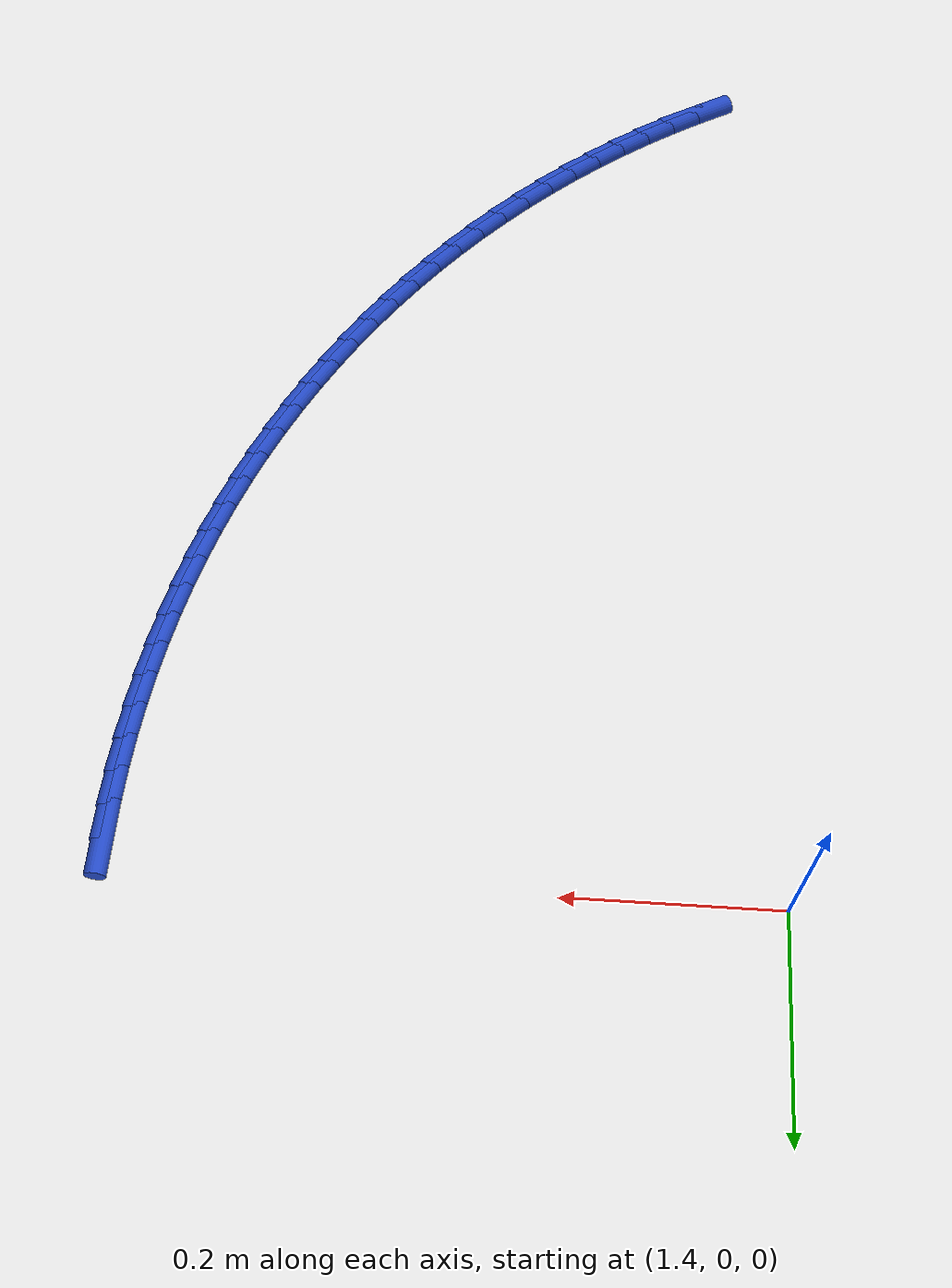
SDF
<sdf version="1.6">
 <world name="default">
  <model name="ground_plane">
   <static>1</static>
   <link name="link">
    <collision name="collision">
     <geometry><plane><normal>0 0 1</normal><size>100 100</size></plane></geometry>
     <surface><friction><ode><mu>100</mu><mu2>50</mu2></ode></friction></surface>
    </collision>
    <visual name="visual">
     <cast_shadows>0</cast_shadows>
     <geometry><plane><normal>0 0 1</normal><size>100 100</size></plane></geometry>
     <material>
      <script><uri>file://media/materials/scripts/gazebo.material</uri><name>Gazebo/WhiteGlow</name></script>
     </material>
    </visual>
   </link>
  </model>
  <model name="line">
   <static>1</static>
   <static>1</static>
   <static>1</static>
   <static>1</static>
   <static>1</static>
   <static>1</static>
   <static>1</static>
   <static>1</static>
   <static>1</static>
   <static>1</static>
   <static>1</static>
   <static>1</static>
   <static>1</static>
   <static>1</static>
   <static>1</static>
   <static>1</static>
   <static>1</static>
   <static>1</static>
   <static>1</static>
   <static>1</static>
   <static>1</static>
   <static>1</static>
   <static>1</static>
   <static>1</static>
   <static>1</static>
   <static>1</static>
   <static>1</static>
   <static>1</static>
   <static>1</static>
   <static>1</static>
   <static>1</static>
   <static>1</static>
   <static>1</static>
   <static>1</static>
   <static>1</static>
   <static>1</static>
   <static>1</static>
   <static>1</static>
   <static>1</static>
   <static>1</static>
   <static>1</static>
   <static>1</static>
   <static>1</static>
   <static>1</static>
   <static>1</static>
   <static>1</static>
   <static>1</static>
   <static>1</static>
   <static>1</static>
   <static>1</static>
   <static>1</static>
   <static>1</static>
   <static>1</static>
   <static>1</static>
   <static>1</static>
   <static>1</static>
   <static>1</static>
   <static>1</static>
   <static>1</static>
   <static>1</static>
   <static>1</static>
   <static>1</static>
   <static>1</static>
   <static>1</static>
   <static>1</static>
   <static>1</static>
   <static>1</static>
   <static>1</static>
   <static>1</static>
   <static>1</static>
   <static>1</static>
   <static>1</static>
   <static>1</static>
   <static>1</static>
   <static>1</static>
   <static>1</static>
   <static>1</static>
   <static>1</static>
   <static>1</static>
   <static>1</static>
   <static>1</static>
   <static>1</static>
   <static>1</static>
   <static>1</static>
   <static>1</static>
   <static>1</static>
   <static>1</static>
   <static>1</static>
   <static>1</static>
   <static>1</static>
   <static>1</static>
   <static>1</static>
   <static>1</static>
   <static>1</static>
   <static>1</static>
   <static>1</static>
   <static>1</static>
   <static>1</static>
   <static>1</static>
   <static>1</static>
   <static>1</static>
   <static>1</static>
   <link name="link_101">
    <pose>1.999503259582305 -0.031409081267145374 0.01 0 1.57 1.5234431790212166</pose>
    <collision name="collision">
     <geometry><cylinder><radius>0.01</radius><length>0.08</length></cylinder></geometry>
    </collision>
    <visual name="visual">
     <material>
      <script><name>Gazebo/Blue</name><uri>file://media/materials/scripts/gazebo.material</uri></script>
     </material>
     <geometry><cylinder><radius>0.01</radius><length>0.08</length></cylinder></geometry>
    </visual>
   </link>
   <static>1</static>
   <link name="link_102">
    <pose>1.9980162852539491 -0.06278741212037331 0.01 0 1.57 1.4920137451487936</pose>
    <collision name="collision">
     <geometry><cylinder><radius>0.01</radius><length>0.08</length></cylinder></geometry>
    </collision>
    <visual name="visual">
     <material>
      <script><name>Gazebo/Blue</name><uri>file://media/materials/scripts/gazebo.material</uri></script>
     </material>
     <geometry><cylinder><radius>0.01</radius><length>0.08</length></cylinder></geometry>
    </visual>
   </link>
   <static>1</static>
   <link name="link_103">
    <pose>1.9955439474020331 -0.09410424214576474 0.01 0 1.57 1.4606632303339313</pose>
    <collision name="collision">
     <geometry><cylinder><radius>0.01</radius><length>0.08</length></cylinder></geometry>
    </collision>
    <visual name="visual">
     <material>
      <script><name>Gazebo/Blue</name><uri>file://media/materials/scripts/gazebo.material</uri></script>
     </material>
     <geometry><cylinder><radius>0.01</radius><length>0.08</length></cylinder></geometry>
    </visual>
   </link>
   <static>1</static>
   <link name="link_104">
    <pose>1.992091116413654 -0.1253288209294014 0.01 0 1.57 1.4293602481064585</pose>
    <collision name="collision">
     <geometry><cylinder><radius>0.01</radius><length>0.08</length></cylinder></geometry>
    </collision>
    <visual name="visual">
     <material>
      <script><name>Gazebo/Blue</name><uri>file://media/materials/scripts/gazebo.material</uri></script>
     </material>
     <geometry><cylinder><radius>0.01</radius><length>0.08</length></cylinder></geometry>
    </visual>
   </link>
   <static>1</static>
   <link name="link_105">
    <pose>1.9876626626759093 -0.15643039805736497 0.01 0 1.57 1.398073140124333</pose>
    <collision name="collision">
     <geometry><cylinder><radius>0.01</radius><length>0.08</length></cylinder></geometry>
    </collision>
    <visual name="visual">
     <material>
      <script><name>Gazebo/Blue</name><uri>file://media/materials/scripts/gazebo.material</uri></script>
     </material>
     <geometry><cylinder><radius>0.01</radius><length>0.08</length></cylinder></geometry>
    </visual>
   </link>
   <static>1</static>
   <link name="link_106">
    <pose>1.9822634565758985 -0.18737822311573724 0.01 0 1.57 1.3667701578968943</pose>
    <collision name="collision">
     <geometry><cylinder><radius>0.01</radius><length>0.08</length></cylinder></geometry>
    </collision>
    <visual name="visual">
     <material>
      <script><name>Gazebo/Blue</name><uri>file://media/materials/scripts/gazebo.material</uri></script>
     </material>
     <geometry><cylinder><radius>0.01</radius><length>0.08</length></cylinder></geometry>
    </visual>
   </link>
   <static>1</static>
   <link name="link_107">
    <pose>1.9758983685007194 -0.21814154569059993 0.01 0 1.57 1.335419643082002</pose>
    <collision name="collision">
     <geometry><cylinder><radius>0.01</radius><length>0.08</length></cylinder></geometry>
    </collision>
    <visual name="visual">
     <material>
      <script><name>Gazebo/Blue</name><uri>file://media/materials/scripts/gazebo.material</uri></script>
     </material>
     <geometry><cylinder><radius>0.01</radius><length>0.08</length></cylinder></geometry>
    </visual>
   </link>
   <static>1</static>
   <link name="link_108">
    <pose>1.9685722688374692 -0.2486896153680347 0.01 0 1.57 1.3039902092095965</pose>
    <collision name="collision">
     <geometry><cylinder><radius>0.01</radius><length>0.08</length></cylinder></geometry>
    </collision>
    <visual name="visual">
     <material>
      <script><name>Gazebo/Blue</name><uri>file://media/materials/scripts/gazebo.material</uri></script>
     </material>
     <geometry><cylinder><radius>0.01</radius><length>0.08</length></cylinder></geometry>
    </visual>
   </link>
   <static>1</static>
   <link name="link_109">
    <pose>1.9602900279732485 -0.2789916817341234 0.01 0 1.57 1.272450927647741</pose>
    <collision name="collision">
     <geometry><cylinder><radius>0.01</radius><length>0.08</length></cylinder></geometry>
    </collision>
    <visual name="visual">
     <material>
      <script><name>Gazebo/Blue</name><uri>file://media/materials/scripts/gazebo.material</uri></script>
     </material>
     <geometry><cylinder><radius>0.01</radius><length>0.08</length></cylinder></geometry>
    </visual>
   </link>
   <static>1</static>
   <link name="link_110">
    <pose>1.9510565162951532 -0.30901699437494773 0.01 0 1.57 1.2408231952240745</pose>
    <collision name="collision">
     <geometry><cylinder><radius>0.01</radius><length>0.08</length></cylinder></geometry>
    </collision>
    <visual name="visual">
     <material>
      <script><name>Gazebo/Blue</name><uri>file://media/materials/scripts/gazebo.material</uri></script>
     </material>
     <geometry><cylinder><radius>0.01</radius><length>0.08</length></cylinder></geometry>
    </visual>
   </link>
   <static>1</static>
   <link name="link_111">
    <pose>1.940878148194744 -0.33873530455405015 0.01 0 1.57 1.2092839136622535</pose>
    <collision name="collision">
     <geometry><cylinder><radius>0.01</radius><length>0.08</length></cylinder></geometry>
    </collision>
    <visual name="visual">
     <material>
      <script><name>Gazebo/Blue</name><uri>file://media/materials/scripts/gazebo.material</uri></script>
     </material>
     <geometry><cylinder><radius>0.01</radius><length>0.08</length></cylinder></geometry>
    </visual>
   </link>
   <static>1</static>
   <link name="link_112">
    <pose>1.9297675140814308 -0.36811837024481675 0.01 0 1.57 1.1778544797898112</pose>
    <collision name="collision">
     <geometry><cylinder><radius>0.01</radius><length>0.08</length></cylinder></geometry>
    </collision>
    <visual name="visual">
     <material>
      <script><name>Gazebo/Blue</name><uri>file://media/materials/scripts/gazebo.material</uri></script>
     </material>
     <geometry><cylinder><radius>0.01</radius><length>0.08</length></cylinder></geometry>
    </visual>
   </link>
   <static>1</static>
   <link name="link_113">
    <pose>1.9177387483690853 -0.3971384510980942 0.01 0 1.57 1.1465039649749487</pose>
    <collision name="collision">
     <geometry><cylinder><radius>0.01</radius><length>0.08</length></cylinder></geometry>
    </collision>
    <visual name="visual">
     <material>
      <script><name>Gazebo/Blue</name><uri>file://media/materials/scripts/gazebo.material</uri></script>
     </material>
     <geometry><cylinder><radius>0.01</radius><length>0.08</length></cylinder></geometry>
    </visual>
   </link>
   <static>1</static>
   <link name="link_114">
    <pose>1.9048059854715784 -0.42576780676472953 0.01 0 1.57 1.1152009827475076</pose>
    <collision name="collision">
     <geometry><cylinder><radius>0.01</radius><length>0.08</length></cylinder></geometry>
    </collision>
    <visual name="visual">
     <material>
      <script><name>Gazebo/Blue</name><uri>file://media/materials/scripts/gazebo.material</uri></script>
     </material>
     <geometry><cylinder><radius>0.01</radius><length>0.08</length></cylinder></geometry>
    </visual>
   </link>
   <static>1</static>
   <link name="link_115">
    <pose>1.8909833598027816 -0.45397869689556924 0.01 0 1.57 1.0839138747653514</pose>
    <collision name="collision">
     <geometry><cylinder><radius>0.01</radius><length>0.08</length></cylinder></geometry>
    </collision>
    <visual name="visual">
     <material>
      <script><name>Gazebo/Blue</name><uri>file://media/materials/scripts/gazebo.material</uri></script>
     </material>
     <geometry><cylinder><radius>0.01</radius><length>0.08</length></cylinder></geometry>
    </visual>
   </link>
   <static>1</static>
   <link name="link_116">
    <pose>1.8762850057765663 -0.48174338114145965 0.01 0 1.57 1.0526108925379165</pose>
    <collision name="collision">
     <geometry><cylinder><radius>0.01</radius><length>0.08</length></cylinder></geometry>
    </collision>
    <visual name="visual">
     <material>
      <script><name>Gazebo/Blue</name><uri>file://media/materials/scripts/gazebo.material</uri></script>
     </material>
     <geometry><cylinder><radius>0.01</radius><length>0.08</length></cylinder></geometry>
    </visual>
   </link>
   <static>1</static>
   <link name="link_117">
    <pose>1.8607250578068038 -0.5090341191532488 0.01 0 1.57 1.0212603777230518</pose>
    <collision name="collision">
     <geometry><cylinder><radius>0.01</radius><length>0.08</length></cylinder></geometry>
    </collision>
    <visual name="visual">
     <material>
      <script><name>Gazebo/Blue</name><uri>file://media/materials/scripts/gazebo.material</uri></script>
     </material>
     <geometry><cylinder><radius>0.01</radius><length>0.08</length></cylinder></geometry>
    </visual>
   </link>
   <static>1</static>
   <link name="link_118">
    <pose>1.8443176503073655 -0.5358231705817827 0.01 0 1.57 0.9898309438506114</pose>
    <collision name="collision">
     <geometry><cylinder><radius>0.01</radius><length>0.08</length></cylinder></geometry>
    </collision>
    <visual name="visual">
     <material>
      <script><name>Gazebo/Blue</name><uri>file://media/materials/scripts/gazebo.material</uri></script>
     </material>
     <geometry><cylinder><radius>0.01</radius><length>0.08</length></cylinder></geometry>
    </visual>
   </link>
   <static>1</static>
   <link name="link_119">
    <pose>1.8270769176921233 -0.5620827950779087 0.01 0 1.57 0.9582916622887604</pose>
    <collision name="collision">
     <geometry><cylinder><radius>0.01</radius><length>0.08</length></cylinder></geometry>
    </collision>
    <visual name="visual">
     <material>
      <script><name>Gazebo/Blue</name><uri>file://media/materials/scripts/gazebo.material</uri></script>
     </material>
     <geometry><cylinder><radius>0.01</radius><length>0.08</length></cylinder></geometry>
    </visual>
   </link>
   <static>1</static>
   <link name="link_120">
    <pose>1.809016994374948 -0.5877852522924727 0.01 0 1.57 0.9266639298651259</pose>
    <collision name="collision">
     <geometry><cylinder><radius>0.01</radius><length>0.08</length></cylinder></geometry>
    </collision>
    <visual name="visual">
     <material>
      <script><name>Gazebo/Blue</name><uri>file://media/materials/scripts/gazebo.material</uri></script>
     </material>
     <geometry><cylinder><radius>0.01</radius><length>0.08</length></cylinder></geometry>
    </visual>
   </link>
   <static>1</static>
   <link name="link_121">
    <pose>1.7901533281783553 -0.6129037561235586 0.01 0 1.57 0.8951246483032689</pose>
    <collision name="collision">
     <geometry><cylinder><radius>0.01</radius><length>0.08</length></cylinder></geometry>
    </collision>
    <visual name="visual">
     <material>
      <script><name>Gazebo/Blue</name><uri>file://media/materials/scripts/gazebo.material</uri></script>
     </material>
     <geometry><cylinder><radius>0.01</radius><length>0.08</length></cylinder></geometry>
    </visual>
   </link>
   <static>1</static>
   <link name="link_122">
    <pose>1.770506620559435 -0.6374153374581949 0.01 0 1.57 0.8636952144308402</pose>
    <collision name="collision">
     <geometry><cylinder><radius>0.01</radius><length>0.08</length></cylinder></geometry>
    </collision>
    <visual name="visual">
     <material>
      <script><name>Gazebo/Blue</name><uri>file://media/materials/scripts/gazebo.material</uri></script>
     </material>
     <geometry><cylinder><radius>0.01</radius><length>0.08</length></cylinder></geometry>
    </visual>
   </link>
   <static>1</static>
   <link name="link_123">
    <pose>1.7500988863839235 -0.6612979814306476 0.01 0 1.57 0.8323446996159717</pose>
    <collision name="collision">
     <geometry><cylinder><radius>0.01</radius><length>0.08</length></cylinder></geometry>
    </collision>
    <visual name="visual">
     <material>
      <script><name>Gazebo/Blue</name><uri>file://media/materials/scripts/gazebo.material</uri></script>
     </material>
     <geometry><cylinder><radius>0.01</radius><length>0.08</length></cylinder></geometry>
    </visual>
   </link>
   <static>1</static>
   <link name="link_124">
    <pose>1.7289521405175545 -0.6845296731751812 0.01 0 1.57 0.8010417173885143</pose>
    <collision name="collision">
     <geometry><cylinder><radius>0.01</radius><length>0.08</length></cylinder></geometry>
    </collision>
    <visual name="visual">
     <material>
      <script><name>Gazebo/Blue</name><uri>file://media/materials/scripts/gazebo.material</uri></script>
     </material>
     <geometry><cylinder><radius>0.01</radius><length>0.08</length></cylinder></geometry>
    </visual>
   </link>
   <static>1</static>
   <link name="link_125">
    <pose>1.7070883978260623 -0.7070883978260613 0.01 0 1.57 0.7697546094063649</pose>
    <collision name="collision">
     <geometry><cylinder><radius>0.01</radius><length>0.08</length></cylinder></geometry>
    </collision>
    <visual name="visual">
     <material>
      <script><name>Gazebo/Blue</name><uri>file://media/materials/scripts/gazebo.material</uri></script>
     </material>
     <geometry><cylinder><radius>0.01</radius><length>0.08</length></cylinder></geometry>
    </visual>
   </link>
   <static>1</static>
   <link name="link_126">
    <pose>1.6845296731751818 -0.7289521405175532 0.01 0 1.57 0.738451627178945</pose>
    <collision name="collision">
     <geometry><cylinder><radius>0.01</radius><length>0.08</length></cylinder></geometry>
    </collision>
    <visual name="visual">
     <material>
      <script><name>Gazebo/Blue</name><uri>file://media/materials/scripts/gazebo.material</uri></script>
     </material>
     <geometry><cylinder><radius>0.01</radius><length>0.08</length></cylinder></geometry>
    </visual>
   </link>
   <static>1</static>
   <link name="link_127">
    <pose>1.6612979814306486 -0.7500988863839226 0.01 0 1.57 0.7071011123640571</pose>
    <collision name="collision">
     <geometry><cylinder><radius>0.01</radius><length>0.08</length></cylinder></geometry>
    </collision>
    <visual name="visual">
     <material>
      <script><name>Gazebo/Blue</name><uri>file://media/materials/scripts/gazebo.material</uri></script>
     </material>
     <geometry><cylinder><radius>0.01</radius><length>0.08</length></cylinder></geometry>
    </visual>
   </link>
   <static>1</static>
   <link name="link_128">
    <pose>1.6374153374581957 -0.7705066205594344 0.01 0 1.57 0.6756716784916389</pose>
    <collision name="collision">
     <geometry><cylinder><radius>0.01</radius><length>0.08</length></cylinder></geometry>
    </collision>
    <visual name="visual">
     <material>
      <script><name>Gazebo/Blue</name><uri>file://media/materials/scripts/gazebo.material</uri></script>
     </material>
     <geometry><cylinder><radius>0.01</radius><length>0.08</length></cylinder></geometry>
    </visual>
   </link>
   <static>1</static>
   <link name="link_129">
    <pose>1.61290375612356 -0.7901533281783546 0.01 0 1.57 0.6441323969297693</pose>
    <collision name="collision">
     <geometry><cylinder><radius>0.01</radius><length>0.08</length></cylinder></geometry>
    </collision>
    <visual name="visual">
     <material>
      <script><name>Gazebo/Blue</name><uri>file://media/materials/scripts/gazebo.material</uri></script>
     </material>
     <geometry><cylinder><radius>0.01</radius><length>0.08</length></cylinder></geometry>
    </visual>
   </link>
   <static>1</static>
   <link name="link_130">
    <pose>1.5877852522924738 -0.8090169943749473 0.01 0 1.57 0.612504664506133</pose>
    <collision name="collision">
     <geometry><cylinder><radius>0.01</radius><length>0.08</length></cylinder></geometry>
    </collision>
    <visual name="visual">
     <material>
      <script><name>Gazebo/Blue</name><uri>file://media/materials/scripts/gazebo.material</uri></script>
     </material>
     <geometry><cylinder><radius>0.01</radius><length>0.08</length></cylinder></geometry>
    </visual>
   </link>
   <static>1</static>
   <link name="link_131">
    <pose>1.5620827950779095 -0.8270769176921229 0.01 0 1.57 0.5809653829443048</pose>
    <collision name="collision">
     <geometry><cylinder><radius>0.01</radius><length>0.08</length></cylinder></geometry>
    </collision>
    <visual name="visual">
     <material>
      <script><name>Gazebo/Blue</name><uri>file://media/materials/scripts/gazebo.material</uri></script>
     </material>
     <geometry><cylinder><radius>0.01</radius><length>0.08</length></cylinder></geometry>
    </visual>
   </link>
   <static>1</static>
   <link name="link_132">
    <pose>1.535823170581784 -0.8443176503073655 0.01 0 1.57 0.5495359490718422</pose>
    <collision name="collision">
     <geometry><cylinder><radius>0.01</radius><length>0.08</length></cylinder></geometry>
    </collision>
    <visual name="visual">
     <material>
      <script><name>Gazebo/Blue</name><uri>file://media/materials/scripts/gazebo.material</uri></script>
     </material>
     <geometry><cylinder><radius>0.01</radius><length>0.08</length></cylinder></geometry>
    </visual>
   </link>
   <static>1</static>
   <link name="link_133">
    <pose>1.5090341191532497 -0.8607250578068039 0.01 0 1.57 0.5181854342569814</pose>
    <collision name="collision">
     <geometry><cylinder><radius>0.01</radius><length>0.08</length></cylinder></geometry>
    </collision>
    <visual name="visual">
     <material>
      <script><name>Gazebo/Blue</name><uri>file://media/materials/scripts/gazebo.material</uri></script>
     </material>
     <geometry><cylinder><radius>0.01</radius><length>0.08</length></cylinder></geometry>
    </visual>
   </link>
   <static>1</static>
   <link name="link_134">
    <pose>1.4817433811414604 -0.8762850057765665 0.01 0 1.57 0.4868824520295433</pose>
    <collision name="collision">
     <geometry><cylinder><radius>0.01</radius><length>0.08</length></cylinder></geometry>
    </collision>
    <visual name="visual">
     <material>
      <script><name>Gazebo/Blue</name><uri>file://media/materials/scripts/gazebo.material</uri></script>
     </material>
     <geometry><cylinder><radius>0.01</radius><length>0.08</length></cylinder></geometry>
    </visual>
   </link>
   <static>1</static>
   <static>1</static>
   <static>1</static>
   <static>1</static>
   <static>1</static>
   <static>1</static>
   <static>1</static>
   <static>1</static>
   <static>1</static>
   <static>1</static>
   <static>1</static>
   <static>1</static>
   <static>1</static>
   <static>1</static>
   <static>1</static>
   <static>1</static>
   <static>1</static>
   <static>1</static>
   <static>1</static>
   <static>1</static>
   <static>1</static>
   <static>1</static>
   <static>1</static>
   <static>1</static>
   <static>1</static>
   <static>1</static>
   <static>1</static>
   <static>1</static>
   <static>1</static>
   <static>1</static>
   <static>1</static>
   <static>1</static>
   <static>1</static>
   <static>1</static>
   <static>1</static>
   <static>1</static>
   <static>1</static>
   <static>1</static>
   <static>1</static>
   <static>1</static>
   <static>1</static>
   <static>1</static>
   <static>1</static>
   <static>1</static>
   <static>1</static>
   <static>1</static>
   <static>1</static>
   <static>1</static>
   <static>1</static>
   <static>1</static>
   <static>1</static>
   <static>1</static>
   <static>1</static>
   <static>1</static>
   <static>1</static>
   <static>1</static>
   <static>1</static>
   <static>1</static>
   <static>1</static>
   <static>1</static>
   <static>1</static>
   <static>1</static>
   <static>1</static>
   <static>1</static>
   <static>1</static>
   <static>1</static>
   <static>1</static>
  </model>
 </world>
</sdf>
